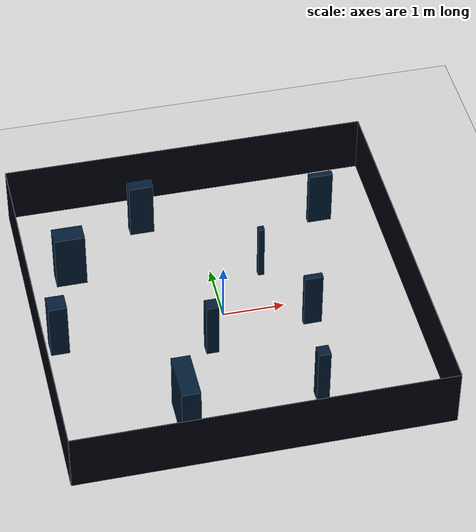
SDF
<?xml version="1.0"?>
<sdf version='1.8'>
    <world name='maze'>
        <physics name='fast_sim' type='ode'>
            <max_step_size>0.003</max_step_size>
            <real_time_factor>200</real_time_factor>
            <real_time_update_rate>1000</real_time_update_rate>
        </physics>

        <plugin name="gz::sim::systems::Physics" filename="gz-sim-physics-system" />
        <plugin name="gz::sim::systems::UserCommands" filename="gz-sim-user-commands-system" />
        <plugin name="gz::sim::systems::SceneBroadcaster" filename="gz-sim-scene-broadcaster-system" />
        <plugin name="gz::sim::systems::Contact" filename="gz-sim-contact-system" />

        <light name='sun' type='directional'>
            <cast_shadows>1</cast_shadows>
            <pose>0 0 10 0 -0 0</pose>
            <diffuse>0.8 0.8 0.8 1</diffuse>
            <specular>0.2 0.2 0.2 1</specular>
            <attenuation>
                <range>1000</range>
                <constant>0.90000000000000002</constant>
                <linear>0.01</linear>
                <quadratic>0.001</quadratic>
            </attenuation>
            <direction>-0.5 0.1 -0.9</direction>
            <spot>
                <inner_angle>0</inner_angle>
                <outer_angle>0</outer_angle>
                <falloff>0</falloff>
            </spot>
        </light>
        <gravity>0 0 -9.8</gravity>
        <magnetic_field>6e-06 2.3e-05 -4.2e-05</magnetic_field>
        <atmosphere type='adiabatic' />
        <scene>
            <ambient>0.4 0.4 0.4 1</ambient>
            <background>0.7 0.7 0.7 1</background>
            <shadows>1</shadows>
        </scene>
        <model name='ground_plane'>
            <static>1</static>
            <link name='link'>
                <collision name='collision'>
                    <geometry>
                        <plane>
                            <normal>0 0 1</normal>
                            <size>10 10</size>
                        </plane>
                    </geometry>
                    <surface>
                        <friction>
                            <ode />
                        </friction>
                        <bounce />
                        <contact />
                    </surface>
                </collision>
                <visual name='visual'>
                    <geometry>
                        <plane>
                            <normal>0 0 1</normal>
                            <size>10 10</size>
                        </plane>
                    </geometry>
                    <material>
                        <ambient>0.8 0.8 0.8 1</ambient>
                        <diffuse>0.8 0.8 0.8 1</diffuse>
                        <specular>0.8 0.8 0.8 1</specular>
                    </material>
                    <plugin name='__default__' filename='__default__' />
                </visual>
            </link>
            <plugin name='__default__' filename='__default__' />
            <pose>0 0 0 0 -0 0</pose>
        </model>

        <model name='border'>
            <pose>0 0 0.5 0 0 0</pose>
            <static>true</static>
            <link name='wall1'>
                <pose>-3.005 0 0 0 0 0</pose>
                <static>true</static>
                <collision name='wall1_collision'>
                    <geometry>
                        <box>
                            <size>0.01 6 1</size>
                        </box>
                    </geometry>
                </collision>
                <visual name='wall1_visual'>
                    <geometry>
                        <box>
                            <size>0.01 6 1</size>
                        </box>
                    </geometry>
                    <material>
                        <ambient>0.1 0.1 0.1 1</ambient>
                        <diffuse>0 0.01 0.05 1</diffuse>
                        <specular>0 0.01 0.05 1</specular>
                    </material>
                </visual>
            </link>
            <link name='wall2'>
                <pose>3.005 0 0 0 0 0</pose>
                <static>true</static>
                <collision name='wall2_collision'>
                    <geometry>
                        <box>
                            <size>0.01 6 1</size>
                        </box>
                    </geometry>
                </collision>
                <visual name='wall2_visual'>
                    <geometry>
                        <box>
                            <size>0.01 6 1</size>
                        </box>
                    </geometry>
                    <material>
                        <ambient>0.1 0.1 0.1 1</ambient>
                        <diffuse>0 0.01 0.05 1</diffuse>
                        <specular>0 0.01 0.05 1</specular>
                    </material>
                </visual>
            </link>
            <link name='wall3'>
                <pose>0 3.005 0 0 0 0</pose>
                <static>true</static>
                <collision name='wall3_collision'>
                    <geometry>
                        <box>
                            <size>6 0.01 1</size>
                        </box>
                    </geometry>
                </collision>
                <visual name='wall3_visual'>
                    <geometry>
                        <box>
                            <size>6 0.01 1</size>
                        </box>
                    </geometry>
                    <material>
                        <ambient>0.1 0.1 0.1 1</ambient>
                        <diffuse>0 0.01 0.05 1</diffuse>
                        <specular>0 0.01 0.05 1</specular>
                    </material>
                </visual>
            </link>
            <link name='wall4'>
                <pose>0 -3.005 0 0 0 0</pose>
                <static>true</static>
                <collision name='wall4_collision'>
                    <geometry>
                        <box>
                            <size>6 0.01 1</size>
                        </box>
                    </geometry>
                    <material>
                        <ambient>0.1 0.1 0.1 1</ambient>
                        <diffuse>0 0.01 0.05 1</diffuse>
                        <specular>0 0.01 0.05 1</specular>
                    </material>
                </collision>
                <visual name='wall4_visual'>
                    <geometry>
                        <box>
                            <size>6 0.01 1</size>
                        </box>
                    </geometry>
                    <material>
                        <ambient>0.1 0.1 0.1 1</ambient>
                        <diffuse>0 0.01 0.05 1</diffuse>
                        <specular>0 0.01 0.05 1</specular>
                    </material>
                </visual>
            </link>
        </model>

        <model name='obstacles'>
            <pose>0 0 0.5 0 0 0</pose>
            <static>true</static>

            <link name='wall2'>
                <pose>2.05 1.85 0 0 0 0</pose>
                <static>true</static>
                <collision name='wall2_collision'>
                    <geometry>
                        <box>
                            <size>0.4 0.1 1</size>
                        </box>
                    </geometry>
                </collision>
                <visual name='wall2_visual'>
                    <geometry>
                        <box>
                            <size>0.4 0.1 1</size>
                        </box>
                    </geometry>
                    <material>
                        <ambient>0.1 0.1 0.1 1</ambient>
                        <diffuse>0 0.1 0.2 1</diffuse>
                        <specular>0 0.01 0.05 1</specular>
                    </material>
                </visual>
            </link>

            <link name='wall3'>
                <pose>-1.05 -2.1 0 0 0 0</pose>
                <static>true</static>
                <collision name='wall3_collision'>
                    <geometry>
                        <box>
                            <size>0.3 0.8 1</size>
                        </box>
                    </geometry>
                </collision>
                <visual name='wall3_visual'>
                    <geometry>
                        <box>
                            <size>0.3 0.8 1</size>
                        </box>
                    </geometry>
                    <material>
                        <ambient>0.1 0.1 0.1 1</ambient>
                        <diffuse>0 0.1 0.2 1</diffuse>
                        <specular>0 0.01 0.05 1</specular>
                    </material>
                </visual>
            </link>

            <link name='wall4'>
                <pose>-0.35 -0.7 0 0 0 0</pose>
                <static>true</static>
                <collision name='wall4_collision'>
                    <geometry>
                        <box>
                            <size>0.2 0.2 1</size>
                        </box>
                    </geometry>
                </collision>
                <visual name='wall4_visual'>
                    <geometry>
                        <box>
                            <size>0.2 0.2 1</size>
                        </box>
                    </geometry>
                    <material>
                        <ambient>0.1 0.1 0.1 1</ambient>
                        <diffuse>0 0.1 0.2 1</diffuse>
                        <specular>0 0.01 0.05 1</specular>
                    </material>
                </visual>
            </link>

            <link name='wall5'>
                <pose>1.1 -2.05 0 0 0 0</pose>
                <static>true</static>
                <collision name='wall5_collision'>
                    <geometry>
                        <box>
                            <size>0.2 0.2 1</size>
                        </box>
                    </geometry>
                </collision>
                <visual name='wall5_visual'>
                    <geometry>
                        <box>
                            <size>0.2 0.2 1</size>
                        </box>
                    </geometry>
                    <material>
                        <ambient>0.1 0.1 0.1 1</ambient>
                        <diffuse>0 0.1 0.2 1</diffuse>
                        <specular>0 0.01 0.05 1</specular>
                    </material>
                </visual>
            </link>

            <link name='wall6'>
                <pose>-2.7 -0.15 0 0 0 0</pose>
                <static>true</static>
                <collision name='wall6_collision'>
                    <geometry>
                        <box>
                            <size>0.3 0.3 1</size>
                        </box>
                    </geometry>
                </collision>
                <visual name='wall6_visual'>
                    <geometry>
                        <box>
                            <size>0.3 0.3 1</size>
                        </box>
                    </geometry>
                    <material>
                        <ambient>0.1 0.1 0.1 1</ambient>
                        <diffuse>0 0.1 0.2 1</diffuse>
                        <specular>0 0.01 0.05 1</specular>
                    </material>
                </visual>
            </link>

            <link name='wall7'>
                <pose>0.8 0.8 0 0 0 0</pose>
                <static>true</static>
                <collision name='wall7_collision'>
                    <geometry>
                        <box>
                            <size>0.1 0.1 1</size>
                        </box>
                    </geometry>
                </collision>
                <visual name='wall7_visual'>
                    <geometry>
                        <box>
                            <size>0.1 0.1 1</size>
                        </box>
                    </geometry>
                    <material>
                        <ambient>0.1 0.1 0.1 1</ambient>
                        <diffuse>0 0.1 0.2 1</diffuse>
                        <specular>0 0.01 0.05 1</specular>
                    </material>
                </visual>
            </link>

            <link name='wall8'>
                <pose>1.35 -0.45 0 0 0 0</pose>
                <static>true</static>
                <collision name='wall8_collision'>
                    <geometry>
                        <box>
                            <size>0.3 0.1 1</size>
                        </box>
                    </geometry>
                </collision>
                <visual name='wall8_visual'>
                    <geometry>
                        <box>
                            <size>0.3 0.1 1</size>
                        </box>
                    </geometry>
                    <material>
                        <ambient>0.1 0.1 0.1 1</ambient>
                        <diffuse>0 0.1 0.2 1</diffuse>
                        <specular>0 0.01 0.05 1</specular>
                    </material>
                </visual>
            </link>

            <link name='wall10'>
                <pose>-2.25 1.35 0 0 0 0</pose>
                <static>true</static>
                <collision name='wall10_collision'>
                    <geometry>
                        <box>
                            <size>0.5 0.3 1</size>
                        </box>
                    </geometry>
                </collision>
                <visual name='wall10_visual'>
                    <geometry>
                        <box>
                            <size>0.5 0.3 1</size>
                        </box>
                    </geometry>
                    <material>
                        <ambient>0.1 0.1 0.1 1</ambient>
                        <diffuse>0 0.1 0.2 1</diffuse>
                        <specular>0 0.01 0.05 1</specular>
                    </material>
                </visual>
            </link>

            <link name='wall11'>
                <pose>-0.9 2.25 0 0 0 0</pose>
                <static>true</static>
                <collision name='wall11_collision'>
                    <geometry>
                        <box>
                            <size>0.4 0.2 1</size>
                        </box>
                    </geometry>
                </collision>
                <visual name='wall11_visual'>
                    <geometry>
                        <box>
                            <size>0.4 0.2 1</size>
                        </box>
                    </geometry>
                    <material>
                        <ambient>0.1 0.1 0.1 1</ambient>
                        <diffuse>0 0.1 0.2 1</diffuse>
                        <specular>0 0.01 0.05 1</specular>
                    </material>
                </visual>
            </link>
        </model>
    </world>
</sdf>
